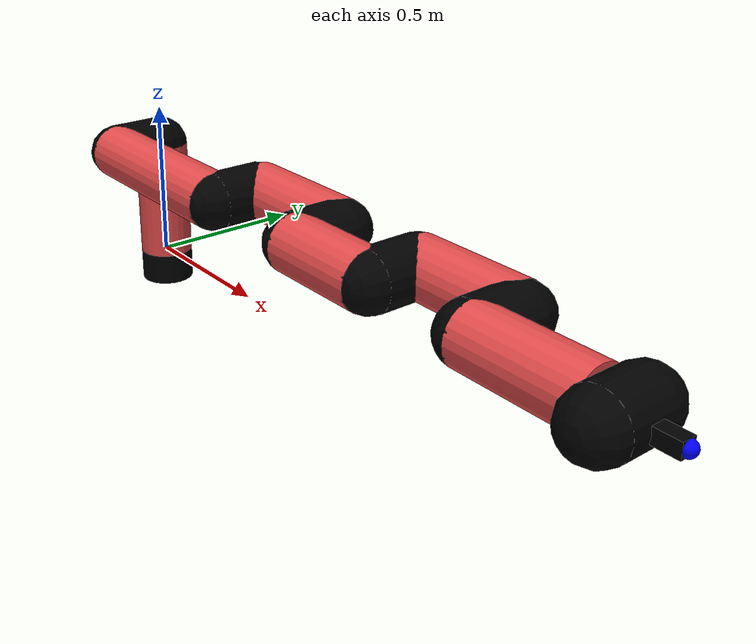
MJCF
<mujoco model="manipulator">
		<compiler angle="degree" coordinate="local" inertiafromgeom="auto" meshdir="meshes/"/>
		<option gravity="0 0 0" integrator="RK4" iterations="30" timestep="0.01"/>

		<default>
		<joint armature="1" limited="true" stiffness="10" damping="15" frictionloss="5.0"/>
		<geom conaffinity="1" condim="3" contype="1" friction=".5 .1 .1" margin="0.002"/>
		<motor ctrllimited="true"/>
		<position ctrllimited="true"/>
		</default>

		<asset>
		<texture builtin="gradient" height="100" rgb1="1.0 1.0 1.0" rgb2="1.0 1.0 1.0" type="skybox" width="100"/>
		<texture builtin="flat" height="32" name="arm_tex" rgb1="0.9 0.3 0.3" type="2d" width="32"/>
		<texture builtin="flat" height="32" name="gripper_tex" rgb1="0.0 0.0 0.0" type="cube" width="32"/>

		<material name="arm_mat" shininess="0.1" specular="0.1" texture="arm_tex"/>
		<material name="gripper_mat" shininess="1" specular="1" texture="gripper_tex"/>
		</asset>

		<worldbody>
		<light cutoff="45" diffuse=".8 .8 .8" dir="0 0.16 -1" directional="false" name="light" pos="0 -2.0 8.0" specular="0.3 0.3 0.3"/>

		<body name="base_link" pos="0 0 -0.1">
		<geom fromto="0 0 0 0 0 0.1" material="arm_mat" name="base_link" rgba="0.0 0.0 0.0 1" size="0.085" type="cylinder"/>
		</body>

		<body name="l1" pos="0 0 0">
<geom fromto="0 0 0 0 0 0.38" material="arm_mat" name="l1" rgba="0.9 0.3 0.3 1" size="0.085" type="cylinder"/>
<geom fromto="0 0 0.38 0 -0.16 0.38" material="arm_mat" name="l1_ex" rgba="0.0 0.0 0.0 1" size="0.085" type="capsule"/>
<joint axis="0 0 1" name="j1" pos="0 0 0" range="-90 90" damping="32.53" frictionloss="8.8"/>

<body name="l2" pos="0 -0.16 0.38">
<geom fromto="0 0 0 0.58 0 0" material="arm_mat" name="l2" rgba="0.9 0.3 0.3 1" size="0.085" type="cylinder"/>
<geom fromto="0.58 0 0 0.58 0.16 0" material="arm_mat" name="l2_ex" rgba="0.0 0.0 0.0 1" size="0.085" type="capsule"/>
<joint axis="0.0 1.0 0.0" name="j2" pos="0 0 0" range="-90 60" damping="38.97" frictionloss="10.35"/>

<body name="l3" pos="0.58 0.16 0">
<geom fromto="0 0 0 0.38 0 0" material="arm_mat" name="l3" rgba="0.9 0.3 0.3 1" size="0.085" type="cylinder"/>
<geom fromto="0.38 0 0 0.38 -0.16 0" material="arm_mat" name="l3_ex" rgba="0.0 0.0 0.0 1" size="0.085" type="capsule"/>
<joint axis="0.0 1.0 0.0" name="j3" pos="0 0 0" range="-30 60" damping="29.63" frictionloss="9.74"/>

<body name="l4" pos="0.38 -0.16 0">
<geom fromto="0 0 0 0.3 0 0" material="arm_mat" name="l4" rgba="0.9 0.3 0.3 1" size="0.085" type="cylinder"/>
<geom fromto="0.3 0 0 0.3 0.16 0" material="arm_mat" name="l4_ex" rgba="0.0 0.0 0.0 1" size="0.085" type="capsule"/>
<joint axis="0.0 1.0 0.0" name="j4" pos="0 0 0" range="-30 60" damping="35.87" frictionloss="9.38"/>

<body name="l5" pos="0.3 0.16 0">
<geom fromto="0 0 0 0.34 0 0" material="arm_mat" name="l5" rgba="0.9 0.3 0.3 1" size="0.085" type="cylinder"/>
<geom fromto="0.34 0 0 0.34 -0.16 0" material="arm_mat" name="l5_ex" rgba="0.0 0.0 0.0 1" size="0.085" type="capsule"/>
<joint axis="0.0 1.0 0.0" name="j5" pos="0 0 0" range="-30 60" damping="18.47" frictionloss="10.06"/>

<body name="l6" pos="0.34 -0.16 0">
<geom fromto="0 0 0 0.35 0 0" material="arm_mat" name="l6" rgba="0.9 0.3 0.3 1" size="0.085" type="cylinder"/>
<joint axis="0.0 1.0 0.0" name="j6" pos="0 0 0" range="-30 60" damping="27.65" frictionloss="11.51"/>

<body name="gripper" pos="0.35 0 0">
<geom fromto="0.05 -0.07 0 0.05 0.07 0" material="gripper_mat" name="gripper" rgba="0.0 0.0 0.0 1" size="0.085" type="capsule"/><joint axis="1 0 0" name="j7" pos="0 0 0" range="-90 90" damping="15" frictionloss="5.0"/><body name="finger" pos="0.1 0 0">
<geom fromto="0 0.0 0 0.1 0.0 0" material="gripper_mat" name="finger" rgba="0.0 0.0 0.0 1" size="0.020 0.06 0.06" type="box"/>
</body>
<site name="current" pos="0.2 0. 0.0" rgba="0. 0. 1.0 1" size="0.02" type="sphere"/>
</body>
</body>
</body>
</body>
</body>
</body>
</body>
</worldbody>
<actuator>
<motor ctrllimited="true" ctrlrange="-1.0 1.0" joint="j1" gear="64.93"/>
<motor ctrllimited="true" ctrlrange="-1.0 1.0" joint="j2" gear="57.73"/>
<motor ctrllimited="true" ctrlrange="-1.0 1.0" joint="j3" gear="50.9"/>
<motor ctrllimited="true" ctrlrange="-1.0 1.0" joint="j4" gear="70.73"/>
<motor ctrllimited="true" ctrlrange="-1.0 1.0" joint="j5" gear="108.55"/>
<motor ctrllimited="true" ctrlrange="-1.0 1.0" joint="j6" gear="86.72"/>
<motor ctrllimited="true" ctrlrange="-1.0 1.0" joint="j7" gear="80"/>
</actuator>
</mujoco>
